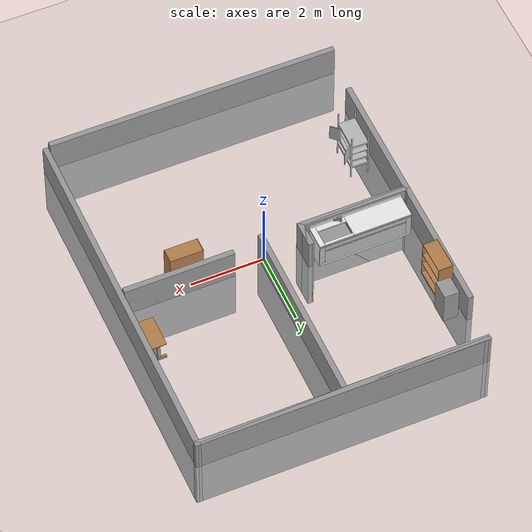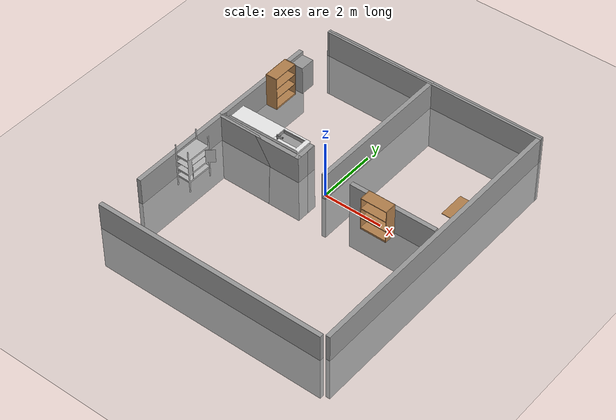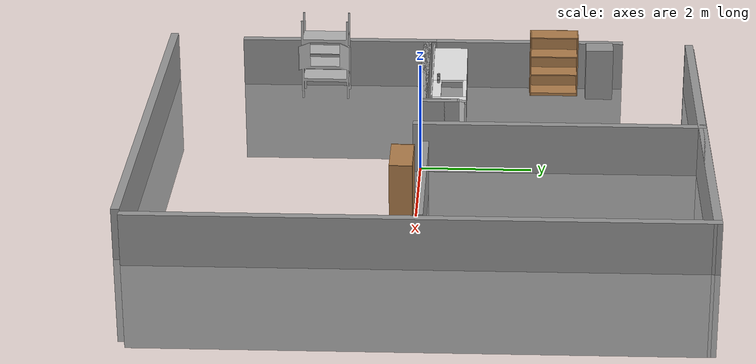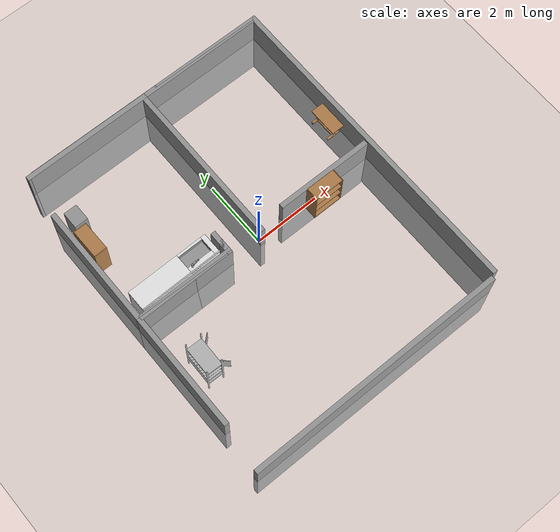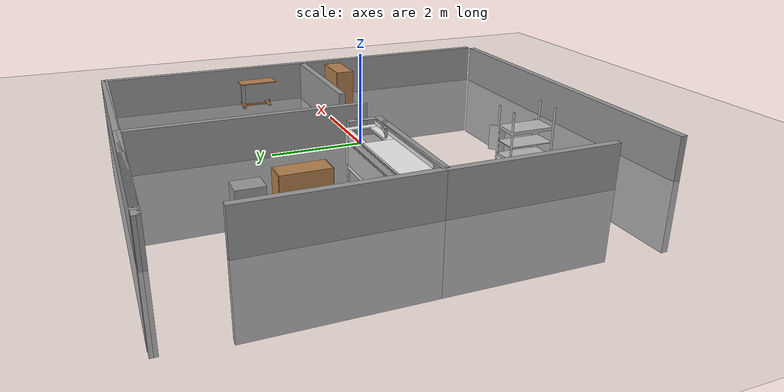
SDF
<sdf version="1.7">
 <world name="default">
  <light name="sun" type="directional">
   <pose>0 0 10 0 -0 0</pose>
   <diffuse>0.8 0.8 0.8 1</diffuse>
   <specular>0.2 0.2 0.2 1</specular>
   <attenuation>
    <range>1000</range>
    <constant>0.9</constant>
    <linear>0.01</linear>
    <quadratic>0.001</quadratic>
   </attenuation>
   <direction>-0.5 0.1 -0.9</direction>
   <spot><inner_angle>0</inner_angle><outer_angle>0</outer_angle><falloff>0</falloff></spot>
  </light>
  <model name="ground_plane">
   <static>1</static>
   <link name="link">
    <collision name="collision">
     <geometry><plane><normal>0 0 1</normal><size>100 100</size></plane></geometry>
     <surface><friction><ode><mu>100</mu><mu2>50</mu2></ode></friction></surface>
    </collision>
    <visual name="visual">
     <cast_shadows>0</cast_shadows>
     <geometry><plane><normal>0 0 1</normal><size>100 100</size></plane></geometry>
     <material>
      <script><uri>file://media/materials/scripts/gazebo.material</uri><name>Gazebo/Grey</name></script>
     </material>
    </visual>
   </link>
  </model>
  <gravity>0 0 -9.8</gravity>
  <magnetic_field>6e-06 2.3e-05 -4.2e-05</magnetic_field>
  <atmosphere type="adiabatic"/>
  <physics type="ode">
   <max_step_size>0.001</max_step_size>
   <real_time_factor>1</real_time_factor>
   <real_time_update_rate>1000</real_time_update_rate>
  </physics>
  <scene><ambient>0.4 0.4 0.4 1</ambient><background>0.7 0.7 0.7 1</background><shadows>1</shadows></scene>
  <spherical_coordinates>
   <surface_model>EARTH_WGS84</surface_model>
   <latitude_deg>0</latitude_deg>
   <longitude_deg>0</longitude_deg>
   <elevation>0</elevation>
   <heading_deg>0</heading_deg>
  </spherical_coordinates>
  <model name="rc2025_0">
   <pose>-0.060527 0.05268 -1.57742 0 -0 0</pose>
   <link name="Wall_44">
    <collision name="Wall_44_Collision">
     <geometry><box><size>7.75 0.15 2.5</size></box></geometry>
     <pose>0 0 1.25 0 -0 0</pose>
    </collision>
    <visual name="Wall_44_Visual">
     <pose>0 0 1.25 0 -0 0</pose>
     <geometry><box><size>7.75 0.15 2.5</size></box></geometry>
     <material>
      <script><uri>file://media/materials/scripts/gazebo.material</uri><name>Gazebo/Grey</name></script>
      <ambient>1 1 1 1</ambient>
     </material>
     <meta><layer>0</layer></meta>
    </visual>
    <pose>0.23198 4.99895 0 0 -0 3.14159</pose>
   </link>
   <link name="Wall_47">
    <collision name="Wall_47_Collision">
     <geometry><box><size>4 0.15 2.5</size></box></geometry>
     <pose>0 0 1.25 0 -0 0</pose>
    </collision>
    <visual name="Wall_47_Visual">
     <pose>0 0 1.25 0 -0 0</pose>
     <geometry><box><size>4 0.15 2.5</size></box></geometry>
     <material>
      <script><uri>file://media/materials/scripts/gazebo.material</uri><name>Gazebo/Grey</name></script>
      <ambient>1 1 1 1</ambient>
     </material>
     <meta><layer>0</layer></meta>
    </visual>
    <pose>-1.83093 4.98956 0 0 -0 3.14159</pose>
   </link>
   <link name="Wall_48">
    <collision name="Wall_48_Collision">
     <geometry><box><size>7.93791 0.15 2.5</size></box></geometry>
     <pose>0 0 1.25 0 -0 0</pose>
    </collision>
    <visual name="Wall_48_Visual">
     <pose>0 0 1.25 0 -0 0</pose>
     <geometry><box><size>7.93791 0.15 2.5</size></box></geometry>
     <material>
      <script><uri>file://media/materials/scripts/gazebo.material</uri><name>Gazebo/Grey</name></script>
      <ambient>1 1 1 1</ambient>
     </material>
     <meta><layer>0</layer></meta>
    </visual>
    <pose>0.138025 4.99426 0 0 -0 0.001206</pose>
   </link>
   <link name="Wall_50">
    <collision name="Wall_50_Collision">
     <geometry><box><size>5.25 0.15 2.5</size></box></geometry>
     <pose>0 0 1.25 0 -0 0</pose>
    </collision>
    <visual name="Wall_50_Visual">
     <pose>0 0 1.25 0 -0 0</pose>
     <geometry><box><size>5.25 0.15 2.5</size></box></geometry>
     <material>
      <script><uri>file://media/materials/scripts/gazebo.material</uri><name>Gazebo/Grey</name></script>
      <ambient>1 1 1 1</ambient>
     </material>
     <meta><layer>0</layer></meta>
    </visual>
    <pose>0.094071 2.43956 0 0 -0 -1.5708</pose>
   </link>
   <link name="Wall_52">
    <collision name="Wall_52_Collision">
     <geometry><box><size>0.75 0.15 2.5</size></box></geometry>
     <pose>0 0 1.25 0 -0 0</pose>
    </collision>
    <visual name="Wall_52_Visual">
     <pose>0 0 1.25 0 -0 0</pose>
     <geometry><box><size>0.75 0.15 2.5</size></box></geometry>
     <material>
      <script><uri>file://media/materials/scripts/gazebo.material</uri><name>Gazebo/Grey</name></script>
      <ambient>1 1 1 1</ambient>
     </material>
     <meta><layer>0</layer></meta>
    </visual>
    <pose>-0.954949 0.246332 0 0 -0 -1.5708</pose>
   </link>
   <link name="Wall_53">
    <collision name="Wall_53_Collision">
     <geometry><box><size>3 0.15 2.5</size></box></geometry>
     <pose>0 0 1.25 0 -0 0</pose>
    </collision>
    <visual name="Wall_53_Visual">
     <pose>0 0 1.25 0 -0 0</pose>
     <geometry><box><size>3 0.15 2.5</size></box></geometry>
     <material>
      <script><uri>file://media/materials/scripts/gazebo.material</uri><name>Gazebo/Grey</name></script>
      <ambient>1 1 1 1</ambient>
     </material>
     <meta><layer>0</layer></meta>
    </visual>
    <pose>-2.37995 -0.053668 0 0 -0 3.14159</pose>
   </link>
   <link name="Wall_54">
    <collision name="Wall_54_Collision">
     <geometry><box><size>3 0.15 2.5</size></box></geometry>
     <pose>0 0 1.25 0 -0 0</pose>
    </collision>
    <visual name="Wall_54_Visual">
     <pose>0 0 1.25 0 -0 0</pose>
     <geometry><box><size>3 0.15 2.5</size></box></geometry>
     <material>
      <script><uri>file://media/materials/scripts/gazebo.material</uri><name>Gazebo/Grey</name></script>
      <ambient>1 1 1 1</ambient>
     </material>
     <meta><layer>0</layer></meta>
    </visual>
    <pose>-2.37995 -0.053668 0 0 -0 0</pose>
   </link>
   <link name="Wall_55">
    <collision name="Wall_55_Collision">
     <geometry><box><size>0.75 0.15 2.5</size></box></geometry>
     <pose>0 0 1.25 0 -0 0</pose>
    </collision>
    <visual name="Wall_55_Visual">
     <pose>0 0 1.25 0 -0 0</pose>
     <geometry><box><size>0.75 0.15 2.5</size></box></geometry>
     <material>
      <script><uri>file://media/materials/scripts/gazebo.material</uri><name>Gazebo/Grey</name></script>
      <ambient>1 1 1 1</ambient>
     </material>
     <meta><layer>0</layer></meta>
    </visual>
    <pose>-0.954949 0.246332 0 0 -0 1.5708</pose>
   </link>
   <link name="Wall_57">
    <collision name="Wall_57_Collision">
     <geometry><box><size>3.75 0.15 2.5</size></box></geometry>
     <pose>0 0 1.25 0 -0 0</pose>
    </collision>
    <visual name="Wall_57_Visual">
     <pose>0 0 1.25 0 -0 0</pose>
     <geometry><box><size>3.75 0.15 2.5</size></box></geometry>
     <material>
      <script><uri>file://media/materials/scripts/gazebo.material</uri><name>Gazebo/Grey</name></script>
      <ambient>1 1 1 1</ambient>
     </material>
     <meta><layer>0</layer></meta>
    </visual>
    <pose>-3.90495 1.84633 0 0 -0 -1.5708</pose>
   </link>
   <link name="Wall_59">
    <collision name="Wall_59_Collision">
     <geometry><box><size>3.75 0.15 2.5</size></box></geometry>
     <pose>0 0 1.25 0 -0 0</pose>
    </collision>
    <visual name="Wall_59_Visual">
     <pose>0 0 1.25 0 -0 0</pose>
     <geometry><box><size>3.75 0.15 2.5</size></box></geometry>
     <material>
      <script><uri>file://media/materials/scripts/gazebo.material</uri><name>Gazebo/Grey</name></script>
      <ambient>1 1 1 1</ambient>
     </material>
     <meta><layer>0</layer></meta>
    </visual>
    <pose>-3.90495 -1.75367 0 0 -0 -1.5708</pose>
   </link>
   <link name="Wall_61">
    <collision name="Wall_61_Collision">
     <geometry><box><size>8 0.15 2.5</size></box></geometry>
     <pose>0 0 1.25 0 -0 0</pose>
    </collision>
    <visual name="Wall_61_Visual">
     <pose>0 0 1.25 0 -0 0</pose>
     <geometry><box><size>8 0.15 2.5</size></box></geometry>
     <material>
      <script><uri>file://media/materials/scripts/gazebo.material</uri><name>Gazebo/Grey</name></script>
      <ambient>1 1 1 1</ambient>
     </material>
     <meta><layer>0</layer></meta>
    </visual>
    <pose>-0.10707 -4.99904 0 0 -0 0</pose>
   </link>
   <link name="Wall_63">
    <collision name="Wall_63_Collision">
     <geometry><box><size>10 0.15 2.5</size></box></geometry>
     <pose>0 0 1.25 0 -0 0</pose>
    </collision>
    <visual name="Wall_63_Visual">
     <pose>0 0 1.25 0 -0 0</pose>
     <geometry><box><size>10 0.15 2.5</size></box></geometry>
     <material>
      <script><uri>file://media/materials/scripts/gazebo.material</uri><name>Gazebo/Grey</name></script>
      <ambient>1 1 1 1</ambient>
     </material>
     <meta><layer>0</layer></meta>
    </visual>
    <pose>4.03198 0.073953 0 0 -0 -1.5708</pose>
   </link>
   <link name="Wall_65">
    <collision name="Wall_65_Collision">
     <geometry><box><size>3 0.15 2.5</size></box></geometry>
     <pose>0 0 1.25 0 -0 0</pose>
    </collision>
    <visual name="Wall_65_Visual">
     <pose>0 0 1.25 0 -0 0</pose>
     <geometry><box><size>3 0.15 2.5</size></box></geometry>
     <material>
      <script><uri>file://media/materials/scripts/gazebo.material</uri><name>Gazebo/Grey</name></script>
      <ambient>1 1 1 1</ambient>
     </material>
     <meta><layer>0</layer></meta>
    </visual>
    <pose>2.42037 0.054994 0 0 -0 0</pose>
   </link>
   <static>1</static>
  </model>
  <model name="rc2025_shelf">
   <static>1</static>
   <link name="link">
    <visual name="visual">
     <geometry><mesh><uri>model://rc2025_shelf/meshes/RC2025_shelf_doors.dae</uri></mesh></geometry>
    </visual>
    <collision name="collision">
     <geometry><mesh><uri>model://rc2025_shelf/meshes/RC2025_shelf_doors.dae</uri></mesh></geometry>
    </collision>
   </link>
   <pose>-3.35231 -1.9321 0.041861 0 -0 1.55523</pose>
  </model>
  <model name="bed_table">
   <link name="link">
    <inertial>
     <pose>0 0.449 0.001 0 -0 0</pose>
     <mass>10</mass>
     <inertia><ixx>1</ixx><ixy>0</ixy><ixz>0</ixz><iyy>1</iyy><iyz>0</iyz><izz>1</izz></inertia>
    </inertial>
    <visual name="top_board">
     <pose>0 0.449 0.625 0 -0 0</pose>
     <geometry><box><size>0.398 0.898 0.02</size></box></geometry>
     <material>
      <script><uri>model://base_materials/wood/scripts/wood.material</uri><name>base_materials/wood</name></script>
     </material>
    </visual>
    <collision name="collision_top_board">
     <pose>0 0.449 0.625 0 -0 0</pose>
     <geometry><box><size>0.398 0.898 0.02</size></box></geometry>
    </collision>
    <visual name="right_pole">
     <pose>0 0.817 0.3515 0 -0 0</pose>
     <geometry><box><size>0.072 0.094 0.527</size></box></geometry>
     <material>
      <script><uri>model://base_materials/color/scripts</uri><name>hsr_color/grey</name></script>
     </material>
    </visual>
    <collision name="collision_right_pole">
     <pose>0 0.817 0.3515 0 -0 0</pose>
     <geometry><box><size>0.072 0.094 0.527</size></box></geometry>
    </collision>
    <visual name="right_bottom_pole">
     <pose>0 0.8225 0.044 0 -0 0</pose>
     <geometry><box><size>0.42 0.063 0.088</size></box></geometry>
     <material>
      <script><uri>model://base_materials/wood/scripts/wood.material</uri><name>base_materials/wood</name></script>
     </material>
    </visual>
    <collision name="collision_right_bottom_pole">
     <pose>0 0.8225 0.044 0 -0 0</pose>
     <geometry><box><size>0.42 0.063 0.088</size></box></geometry>
    </collision>
    <visual name="bottom_center_pole">
     <pose>0 0.502 0.03 0 -0 0</pose>
     <geometry><box><size>0.06 0.578 0.03</size></box></geometry>
     <material>
      <script><uri>model://base_materials/wood/scripts/wood.material</uri><name>base_materials/wood</name></script>
     </material>
    </visual>
    <collision name="collision_bottom_center_pole">
     <pose>0 0.502 0.03 0 -0 0</pose>
     <geometry><box><size>0.06 0.578 0.03</size></box></geometry>
    </collision>
    <visual name="left_bottom_pole">
     <pose>0 0.18 0.0325 0 -0 0</pose>
     <geometry><box><size>0.418 0.066 0.025</size></box></geometry>
     <material>
      <script><uri>model://base_materials/wood/scripts/wood.material</uri><name>base_materials/wood</name></script>
     </material>
    </visual>
    <collision name="collision_left_bottom_pole">
     <pose>0 0.18 0.0325 0 -0 0</pose>
     <geometry><box><size>0.418 0.066 0.025</size></box></geometry>
    </collision>
    <visual name="marker_0010">
     <pose>0 0.14 0.093 0 -0 0</pose>
     <geometry><box><size>0.09 0.001 0.09</size></box></geometry>
     <material>
      <script>
       <uri>model://bed_table/marker/0010/scripts</uri>
       <uri>model://bed_table/marker/0010/textures</uri>
       <name>Marker/0010</name>
      </script>
     </material>
    </visual>
    <collision name="collision_marker_0010">
     <pose>0 0.14 0.093 0 -0 0</pose>
     <geometry><box><size>0.09 0.001 0.09</size></box></geometry>
    </collision>
    <visual name="marker_0010_back_plate">
     <pose>0 0.146 0.093 0 -0 0</pose>
     <geometry><box><size>0.09 0.01 0.09</size></box></geometry>
     <material>
      <script><uri>model://base_materials/wood/scripts/wood.material</uri><name>base_materials/wood</name></script>
     </material>
    </visual>
    <collision name="collision_marker_0010_back_plate">
     <pose>0 0.146 0.093 0 -0 0</pose>
     <geometry><box><size>0.09 0.01 0.09</size></box></geometry>
    </collision>
    <velocity_decay><linear>0</linear><angular>0</angular></velocity_decay>
   </link>
   <static>1</static>
   <pose>3.62919 0.964774 0 0 -0 0</pose>
  </model>
  <model name="bookshelf">
   <static>1</static>
   <link name="link">
    <inertial><mass>1</mass></inertial>
    <collision name="back">
     <pose>0 0.005 0.6 0 -0 0</pose>
     <geometry><box><size>0.9 0.01 1.2</size></box></geometry>
    </collision>
    <visual name="visual1">
     <pose>0 0.005 0.6 0 -0 0</pose>
     <geometry><box><size>0.9 0.01 1.2</size></box></geometry>
     <material>
      <script><uri>file://media/materials/scripts/gazebo.material</uri><name>Gazebo/Wood</name></script>
     </material>
    </visual>
    <collision name="left_side">
     <pose>0.45 -0.195 0.6 0 -0 0</pose>
     <geometry><box><size>0.02 0.4 1.2</size></box></geometry>
    </collision>
    <visual name="visual2">
     <pose>0.45 -0.195 0.6 0 -0 0</pose>
     <geometry><box><size>0.02 0.4 1.2</size></box></geometry>
     <material>
      <script><uri>file://media/materials/scripts/gazebo.material</uri><name>Gazebo/Wood</name></script>
     </material>
    </visual>
    <collision name="right_side">
     <pose>-0.45 -0.195 0.6 0 -0 0</pose>
     <geometry><box><size>0.02 0.4 1.2</size></box></geometry>
    </collision>
    <visual name="visual3">
     <pose>-0.45 -0.195 0.6 0 -0 0</pose>
     <geometry><box><size>0.02 0.4 1.2</size></box></geometry>
     <material>
      <script><uri>file://media/materials/scripts/gazebo.material</uri><name>Gazebo/Wood</name></script>
     </material>
    </visual>
    <collision name="bottom">
     <pose>0 -0.195 0.03 0 -0 0</pose>
     <geometry><box><size>0.88 0.4 0.06</size></box></geometry>
    </collision>
    <visual name="visual4">
     <pose>0 -0.195 0.03 0 -0 0</pose>
     <geometry><box><size>0.88 0.4 0.06</size></box></geometry>
     <material>
      <script><uri>file://media/materials/scripts/gazebo.material</uri><name>Gazebo/Wood</name></script>
     </material>
    </visual>
    <collision name="top">
     <pose>0 -0.195 1.19 0 -0 0</pose>
     <geometry><box><size>0.88 0.4 0.02</size></box></geometry>
    </collision>
    <visual name="visual5">
     <pose>0 -0.195 1.19 0 -0 0</pose>
     <geometry><box><size>0.88 0.4 0.02</size></box></geometry>
     <material>
      <script><uri>file://media/materials/scripts/gazebo.material</uri><name>Gazebo/Wood</name></script>
     </material>
    </visual>
    <collision name="low_shelf">
     <pose>0 -0.195 0.43 0 -0 0</pose>
     <geometry><box><size>0.88 0.4 0.02</size></box></geometry>
    </collision>
    <visual name="visual6">
     <pose>0 -0.195 0.43 0 -0 0</pose>
     <geometry><box><size>0.88 0.4 0.02</size></box></geometry>
     <material>
      <script><uri>file://media/materials/scripts/gazebo.material</uri><name>Gazebo/Wood</name></script>
     </material>
    </visual>
    <collision name="high_shelf">
     <pose>0 -0.195 0.8 0 -0 0</pose>
     <geometry><box><size>0.88 0.4 0.02</size></box></geometry>
    </collision>
    <visual name="visual7">
     <pose>0 -0.195 0.8 0 -0 0</pose>
     <geometry><box><size>0.88 0.4 0.02</size></box></geometry>
     <material>
      <script><uri>file://media/materials/scripts/gazebo.material</uri><name>Gazebo/Wood</name></script>
     </material>
    </visual>
   </link>
   <pose>2.07646 -0.05042 0 0 -0 0</pose>
  </model>
  <model name="sink">
   <link name="link">
    <inertial>
     <mass>10</mass>
     <inertia><ixx>1</ixx><ixy>0</ixy><ixz>0</ixz><iyy>1</iyy><iyz>0</iyz><izz>1</izz></inertia>
    </inertial>
    <visual name="faucet1">
     <pose>-0.52 0.82 0.94 0 -0 0</pose>
     <geometry><cylinder><radius>0.027</radius><length>0.18</length></cylinder></geometry>
     <material>
      <script><uri>model://base_materials/color/scripts</uri><name>hsr_color/grey</name></script>
     </material>
    </visual>
    <collision name="collision_faucet1">
     <pose>-0.52 0.82 0.94 0 -0 0</pose>
     <geometry><cylinder><radius>0.027</radius><length>0.18</length></cylinder></geometry>
    </collision>
    <visual name="faucet2">
     <pose>-0.52 0.72 0.97 1.047 -0 0</pose>
     <geometry><cylinder><radius>0.024</radius><length>0.24</length></cylinder></geometry>
     <material>
      <script><uri>model://base_materials/color/scripts</uri><name>hsr_color/grey</name></script>
     </material>
    </visual>
    <collision name="collision_faucet2">
     <pose>-0.52 0.72 0.97 1.047 -0 0</pose>
     <geometry><cylinder><radius>0.024</radius><length>0.24</length></cylinder></geometry>
    </collision>
    <visual name="faucet3">
     <pose>-0.52 0.63 1 0 -0 0</pose>
     <geometry><cylinder><radius>0.015</radius><length>0.04</length></cylinder></geometry>
     <material>
      <script><uri>model://base_materials/color/scripts</uri><name>hsr_color/grey</name></script>
     </material>
    </visual>
    <collision name="collision_faucet3">
     <pose>-0.52 0.63 1 0 -0 0</pose>
     <geometry><cylinder><radius>0.015</radius><length>0.04</length></cylinder></geometry>
    </collision>
    <visual name="faucet_handle">
     <pose>-0.52 0.75 1.03 1.309 -0 0</pose>
     <geometry><box><size>0.048 0.01 0.11</size></box></geometry>
     <material>
      <script><uri>model://base_materials/color/scripts</uri><name>hsr_color/grey</name></script>
     </material>
    </visual>
    <collision name="collision_faucet_handle">
     <pose>-0.52 0.75 1.03 1.309 -0 0</pose>
     <geometry><box><size>0.048 0.01 0.11</size></box></geometry>
    </collision>
    <visual name="back_bucket">
     <pose>-0.57 0.545 0.74 0 -0 0</pose>
     <geometry><box><size>0.02 0.8 0.18</size></box></geometry>
     <material>
      <script><uri>model://base_materials/color/scripts</uri><name>hsr_color/grey</name></script>
     </material>
    </visual>
    <collision name="collision_back_bucket">
     <pose>-0.57 0.545 0.74 0 -0 0</pose>
     <geometry><box><size>0.02 0.8 0.18</size></box></geometry>
    </collision>
    <visual name="front_bucket">
     <pose>-0.06 0.545 0.74 0 -0 0</pose>
     <geometry><box><size>0.02 0.8 0.18</size></box></geometry>
     <material>
      <script><uri>model://base_materials/color/scripts</uri><name>hsr_color/grey</name></script>
     </material>
    </visual>
    <collision name="collision_fromt_bucket">
     <pose>-0.06 0.545 0.74 0 -0 0</pose>
     <geometry><box><size>0.02 0.8 0.18</size></box></geometry>
    </collision>
    <visual name="left_bucket">
     <pose>-0.32 0.14 0.74 0 -0 0</pose>
     <geometry><box><size>0.5 0.02 0.18</size></box></geometry>
     <material>
      <script><uri>model://base_materials/color/scripts</uri><name>hsr_color/grey</name></script>
     </material>
    </visual>
    <collision name="collision_left_bucket">
     <pose>-0.32 0.14 0.74 0 -0 0</pose>
     <geometry><box><size>0.5 0.02 0.18</size></box></geometry>
    </collision>
    <visual name="right_bucket">
     <pose>-0.32 0.96 0.74 0 -0 0</pose>
     <geometry><box><size>0.5 0.02 0.18</size></box></geometry>
     <material>
      <script><uri>model://base_materials/color/scripts</uri><name>hsr_color/grey</name></script>
     </material>
    </visual>
    <collision name="collision_right_bucket">
     <pose>-0.32 0.96 0.74 0 -0 0</pose>
     <geometry><box><size>0.5 0.02 0.18</size></box></geometry>
    </collision>
    <visual name="bottom_bucket">
     <pose>-0.33 0.555 0.695 0 -0 0</pose>
     <geometry><box><size>0.52 0.82 0.02</size></box></geometry>
     <material>
      <script><uri>model://base_materials/color/scripts</uri><name>hsr_color/grey</name></script>
     </material>
    </visual>
    <collision name="collision_bottom_bucket">
     <pose>-0.33 0.555 0.695 0 -0 0</pose>
     <geometry><box><size>0.52 0.82 0.02</size></box></geometry>
    </collision>
    <visual name="front_board">
     <pose>-0.04 1.275 0.425 0 -0 0</pose>
     <geometry><box><size>0.02 2.549 0.85</size></box></geometry>
     <material>
      <script><uri>model://base_materials/color/scripts</uri><name>hsr_color/white</name></script>
     </material>
    </visual>
    <collision name="collision_front_board">
     <pose>-0.04 1.275 0.425 0 -0 0</pose>
     <geometry><box><size>0.02 2.549 0.85</size></box></geometry>
    </collision>
    <visual name="back_board1">
     <pose>-0.625 1.275 0.425 0 -0 0</pose>
     <geometry><box><size>0.05 2.549 0.85</size></box></geometry>
     <material>
      <script><uri>model://base_materials/color/scripts</uri><name>hsr_color/white</name></script>
     </material>
    </visual>
    <collision name="collision_back_board1">
     <pose>-0.625 1.275 0.425 0 -0 0</pose>
     <geometry><box><size>0.05 2.549 0.85</size></box></geometry>
    </collision>
    <visual name="left_board">
     <pose>-0.34 0.025 0.425 0 -0 0</pose>
     <geometry><box><size>0.62 0.05 0.85</size></box></geometry>
     <material>
      <script><uri>model://base_materials/color/scripts</uri><name>hsr_color/white</name></script>
     </material>
    </visual>
    <collision name="collision_left_board">
     <pose>-0.34 0.025 0.425 0 -0 0</pose>
     <geometry><box><size>0.62 0.05 0.85</size></box></geometry>
    </collision>
    <visual name="right_board">
     <pose>-0.34 2.525 0.425 0 -0 0</pose>
     <geometry><box><size>0.62 0.05 0.85</size></box></geometry>
     <material>
      <script><uri>model://base_materials/color/scripts</uri><name>hsr_color/white</name></script>
     </material>
    </visual>
    <collision name="collision_right_board">
     <pose>-0.34 2.525 0.425 0 -0 0</pose>
     <geometry><box><size>0.62 0.05 0.85</size></box></geometry>
    </collision>
    <visual name="top_left_board">
     <pose>-0.325 0.0725 0.835 0 -0 0</pose>
     <geometry><box><size>0.65 0.146 0.04</size></box></geometry>
     <material>
      <script><uri>model://base_materials/color/scripts</uri><name>hsr_color/white</name></script>
     </material>
    </visual>
    <collision name="collision_top_left_board">
     <pose>-0.325 0.0725 0.835 0 -0 0</pose>
     <geometry><box><size>0.65 0.146 0.04</size></box></geometry>
    </collision>
    <visual name="top_right_board">
     <pose>-0.325 1.7475 0.835 0 -0 0</pose>
     <geometry><box><size>0.65 1.606 0.04</size></box></geometry>
     <material>
      <script><uri>model://base_materials/color/scripts</uri><name>hsr_color/white</name></script>
     </material>
    </visual>
    <collision name="collision_top_right_board">
     <pose>-0.325 1.7475 0.835 0 -0 0</pose>
     <geometry><box><size>0.65 1.606 0.04</size></box></geometry>
    </collision>
    <visual name="top_front_board">
     <pose>-0.035 0.545 0.835 0 -0 0</pose>
     <geometry><box><size>0.07 0.8 0.04</size></box></geometry>
     <material>
      <script><uri>model://base_materials/color/scripts</uri><name>hsr_color/white</name></script>
     </material>
    </visual>
    <collision name="collision_top_front_board">
     <pose>-0.035 0.545 0.835 0 -0 0</pose>
     <geometry><box><size>0.07 0.8 0.04</size></box></geometry>
    </collision>
    <visual name="top_back_board">
     <pose>-0.56 0.545 0.835 0 -0 0</pose>
     <geometry><box><size>0.18 0.8 0.04</size></box></geometry>
     <material>
      <script><uri>model://base_materials/color/scripts</uri><name>hsr_color/white</name></script>
     </material>
    </visual>
    <collision name="collision_top_back_board">
     <pose>-0.56 0.545 0.835 0 -0 0</pose>
     <geometry><box><size>0.18 0.8 0.04</size></box></geometry>
    </collision>
    <visual name="back_board2">
     <pose>-0.64 1.275 0.895 0 -0 0</pose>
     <geometry><box><size>0.02 2.55 0.08</size></box></geometry>
     <material>
      <script><uri>model://base_materials/color/scripts</uri><name>hsr_color/white</name></script>
     </material>
    </visual>
    <collision name="collision_back_board2">
     <pose>-0.64 1.275 0.895 0 -0 0</pose>
     <geometry><box><size>0.02 2.55 0.08</size></box></geometry>
    </collision>
    <visual name="handle1_1">
     <pose>-0.015 1.275 0.81 0 -0 0</pose>
     <geometry><box><size>0.03 2.55 0.005</size></box></geometry>
     <material>
      <script><uri>model://base_materials/color/scripts</uri><name>hsr_color/grey</name></script>
     </material>
    </visual>
    <collision name="collision_handle1_1">
     <pose>-0.015 1.275 0.81 0 -0 0</pose>
     <geometry><box><size>0.03 2.55 0.005</size></box></geometry>
    </collision>
    <visual name="handle1_2">
     <pose>-0.029 1.275 0.7925 0 -0 0</pose>
     <geometry><box><size>0.005 2.55 0.04</size></box></geometry>
     <material>
      <script><uri>model://base_materials/color/scripts</uri><name>hsr_color/grey</name></script>
     </material>
    </visual>
    <collision name="collision_handle1_2">
     <pose>-0.029 1.275 0.7925 0 -0 0</pose>
     <geometry><box><size>0.005 2.55 0.04</size></box></geometry>
    </collision>
    <visual name="handle1_3">
     <pose>-0.015 1.275 0.77 0 -0 0</pose>
     <geometry><box><size>0.03 2.55 0.005</size></box></geometry>
     <material>
      <script><uri>model://base_materials/color/scripts</uri><name>hsr_color/grey</name></script>
     </material>
    </visual>
    <collision name="collision_handle1_3">
     <pose>-0.015 1.275 0.77 0 -0 0</pose>
     <geometry><box><size>0.03 2.55 0.005</size></box></geometry>
    </collision>
    <visual name="front_left_drawer">
     <pose>-0.015 0.0725 0.44 0 -0 0</pose>
     <geometry><box><size>0.03 0.145 0.66</size></box></geometry>
     <material>
      <script><uri>model://sink/scripts</uri><uri>model://sink/textures</uri><name>sink/001</name></script>
     </material>
    </visual>
    <collision name="collision_left_drawer">
     <pose>-0.015 0.0725 0.44 0 -0 0</pose>
     <geometry><box><size>0.03 0.145 0.66</size></box></geometry>
    </collision>
    <visual name="front_right_drawer">
     <pose>-0.015 2.4725 0.44 0 -0 0</pose>
     <geometry><box><size>0.03 0.145 0.66</size></box></geometry>
     <material>
      <script><uri>model://sink/scripts</uri><uri>model://sink/textures</uri><name>sink/001</name></script>
     </material>
    </visual>
    <collision name="collision_right_drawer">
     <pose>-0.015 2.4725 0.44 0 -0 0</pose>
     <geometry><box><size>0.03 0.145 0.66</size></box></geometry>
    </collision>
    <visual name="front_top_drawer">
     <pose>-0.015 1.275 0.6975 0 -0 0</pose>
     <geometry><box><size>0.03 2.25 0.145</size></box></geometry>
     <material>
      <script><uri>model://sink/scripts</uri><uri>model://sink/textures</uri><name>sink/001</name></script>
     </material>
    </visual>
    <collision name="collision_top_drawer">
     <pose>-0.015 1.275 0.6975 0 -0 0</pose>
     <geometry><box><size>0.03 2.25 0.145</size></box></geometry>
    </collision>
    <visual name="handle2_1">
     <pose>-0.015 1.275 0.62 0 -0 0</pose>
     <geometry><box><size>0.03 2.25 0.005</size></box></geometry>
     <material>
      <script><uri>model://base_materials/color/scripts</uri><name>hsr_color/grey</name></script>
     </material>
    </visual>
    <collision name="collision_handle2_1">
     <pose>-0.015 1.275 0.62 0 -0 0</pose>
     <geometry><box><size>0.03 2.25 0.005</size></box></geometry>
    </collision>
    <visual name="handle2_2">
     <pose>-0.029 1.275 0.6025 0 -0 0</pose>
     <geometry><box><size>0.005 2.25 0.04</size></box></geometry>
     <material>
      <script><uri>model://base_materials/color/scripts</uri><name>hsr_color/grey</name></script>
     </material>
    </visual>
    <collision name="collision_handle2_2">
     <pose>-0.029 1.275 0.6025 0 -0 0</pose>
     <geometry><box><size>0.005 2.25 0.04</size></box></geometry>
    </collision>
    <visual name="handle2_3">
     <pose>-0.015 1.275 0.58 0 -0 0</pose>
     <geometry><box><size>0.03 2.25 0.005</size></box></geometry>
     <material>
      <script><uri>model://base_materials/color/scripts</uri><name>hsr_color/grey</name></script>
     </material>
    </visual>
    <collision name="collision_handle2_3">
     <pose>-0.015 1.275 0.58 0 -0 0</pose>
     <geometry><box><size>0.03 2.25 0.005</size></box></geometry>
    </collision>
    <visual name="front_bottom_drawer">
     <pose>-0.015 1.275 0.345 0 -0 0</pose>
     <geometry><box><size>0.03 2.25 0.47</size></box></geometry>
     <material>
      <script><uri>model://sink/scripts</uri><uri>model://sink/textures</uri><name>sink/001</name></script>
     </material>
    </visual>
    <collision name="collision_bottom_drawer">
     <pose>-0.015 1.275 0.345 0 -0 0</pose>
     <geometry><box><size>0.03 2.25 0.47</size></box></geometry>
    </collision>
    <velocity_decay><linear>0</linear><angular>0</angular></velocity_decay>
   </link>
   <static>1</static>
   <pose>-1.19418 0.798357 0 0 -0 1.57856</pose>
  </model>
  <model name="bookshelf_clone">
   <static>1</static>
   <link name="link">
    <inertial><mass>1</mass></inertial>
    <collision name="back">
     <pose>0 0.005 0.6 0 -0 0</pose>
     <geometry><box><size>0.9 0.01 1.2</size></box></geometry>
    </collision>
    <visual name="visual1">
     <pose>0 0.005 0.6 0 -0 0</pose>
     <geometry><box><size>0.9 0.01 1.2</size></box></geometry>
     <material>
      <script><uri>file://media/materials/scripts/gazebo.material</uri><name>Gazebo/Wood</name></script>
     </material>
    </visual>
    <collision name="left_side">
     <pose>0.45 -0.195 0.6 0 -0 0</pose>
     <geometry><box><size>0.02 0.4 1.2</size></box></geometry>
    </collision>
    <visual name="visual2">
     <pose>0.45 -0.195 0.6 0 -0 0</pose>
     <geometry><box><size>0.02 0.4 1.2</size></box></geometry>
     <material>
      <script><uri>file://media/materials/scripts/gazebo.material</uri><name>Gazebo/Wood</name></script>
     </material>
    </visual>
    <collision name="right_side">
     <pose>-0.45 -0.195 0.6 0 -0 0</pose>
     <geometry><box><size>0.02 0.4 1.2</size></box></geometry>
    </collision>
    <visual name="visual3">
     <pose>-0.45 -0.195 0.6 0 -0 0</pose>
     <geometry><box><size>0.02 0.4 1.2</size></box></geometry>
     <material>
      <script><uri>file://media/materials/scripts/gazebo.material</uri><name>Gazebo/Wood</name></script>
     </material>
    </visual>
    <collision name="bottom">
     <pose>0 -0.195 0.03 0 -0 0</pose>
     <geometry><box><size>0.88 0.4 0.06</size></box></geometry>
    </collision>
    <visual name="visual4">
     <pose>0 -0.195 0.03 0 -0 0</pose>
     <geometry><box><size>0.88 0.4 0.06</size></box></geometry>
     <material>
      <script><uri>file://media/materials/scripts/gazebo.material</uri><name>Gazebo/Wood</name></script>
     </material>
    </visual>
    <collision name="top">
     <pose>0 -0.195 1.19 0 -0 0</pose>
     <geometry><box><size>0.88 0.4 0.02</size></box></geometry>
    </collision>
    <visual name="visual5">
     <pose>0 -0.195 1.19 0 -0 0</pose>
     <geometry><box><size>0.88 0.4 0.02</size></box></geometry>
     <material>
      <script><uri>file://media/materials/scripts/gazebo.material</uri><name>Gazebo/Wood</name></script>
     </material>
    </visual>
    <collision name="low_shelf">
     <pose>0 -0.195 0.43 0 -0 0</pose>
     <geometry><box><size>0.88 0.4 0.02</size></box></geometry>
    </collision>
    <visual name="visual6">
     <pose>0 -0.195 0.43 0 -0 0</pose>
     <geometry><box><size>0.88 0.4 0.02</size></box></geometry>
     <material>
      <script><uri>file://media/materials/scripts/gazebo.material</uri><name>Gazebo/Wood</name></script>
     </material>
    </visual>
    <collision name="high_shelf">
     <pose>0 -0.195 0.8 0 -0 0</pose>
     <geometry><box><size>0.88 0.4 0.02</size></box></geometry>
    </collision>
    <visual name="visual7">
     <pose>0 -0.195 0.8 0 -0 0</pose>
     <geometry><box><size>0.88 0.4 0.02</size></box></geometry>
     <material>
      <script><uri>file://media/materials/scripts/gazebo.material</uri><name>Gazebo/Wood</name></script>
     </material>
    </visual>
   </link>
   <pose>-3.87402 2.44095 0 0 -0 1.58202</pose>
  </model>
  <model name="unit_box">
   <pose>-3.53894 3.31102 0.500001 2e-06 -1e-06 -0.000304</pose>
   <link name="link">
    <inertial>
     <mass>1</mass>
     <inertia>
      <ixx>0.166667</ixx>
      <ixy>0</ixy>
      <ixz>0</ixz>
      <iyy>0.166667</iyy>
      <iyz>0</iyz>
      <izz>0.166667</izz>
     </inertia>
    </inertial>
    <collision name="collision"><geometry><box><size>0.407781 0.51491 1</size></box></geometry></collision>
    <visual name="visual">
     <geometry><box><size>0.407781 0.51491 1</size></box></geometry>
     <material>
      <script><name>Gazebo/Grey</name><uri>file://media/materials/scripts/gazebo.material</uri></script>
     </material>
    </visual>
   </link>
  </model>
 </world>
</sdf>
